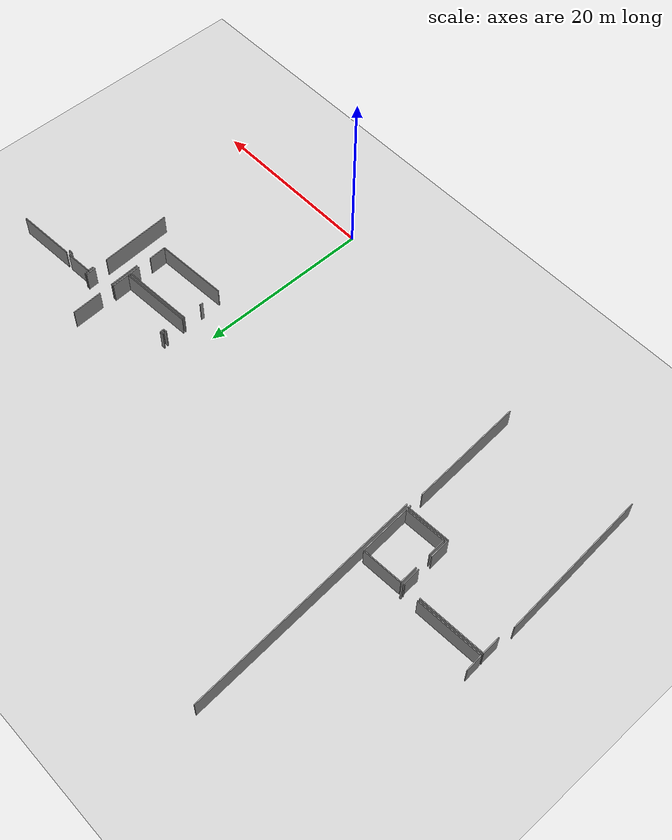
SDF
<sdf version="1.6">
 <world name="default">
  <model name="ground_plane">
   <static>1</static>
   <link name="link">
    <collision name="collision">
     <geometry><plane><normal>0 0 1</normal><size>100 100</size></plane></geometry>
     <surface><friction><ode><mu>100</mu><mu2>50</mu2></ode></friction></surface>
    </collision>
    <visual name="visual">
     <cast_shadows>0</cast_shadows>
     <geometry><plane><normal>0 0 1</normal><size>100 100</size></plane></geometry>
     <material>
      <script><uri>file://media/materials/scripts/gazebo.material</uri><name>Gazebo/Grey</name></script>
     </material>
    </visual>
   </link>
  </model>
  <model name="50025633">
   <static>1</static>
   <link name="Wall_57">
    <collision name="Wall_57_Collision">
     <geometry><box><size>3.56207625701 0.1 2.5</size></box></geometry>
     <pose>1.78103812851 0 1.25 0 0 0</pose>
    </collision>
    <visual name="Wall_57_Visual">
     <pose>1.78103812851 0 1.25 0 0 0</pose>
     <geometry><box><size>3.56207625701 0.1 2.5</size></box></geometry>
     <material>
      <script><uri>file://media/materials/scripts/gazebo.material</uri><name>Gazebo/Grey</name></script>
      <ambient>1 1 1 1</ambient>
     </material>
    </visual>
    <pose>61.6379239159 -26.8075156735 0 0 0 1.62935528593</pose>
   </link>
   <link name="Wall_58">
    <collision name="Wall_58_Collision">
     <geometry><box><size>3.53903980588 0.1 2.5</size></box></geometry>
     <pose>1.76951990294 0 1.25 0 0 0</pose>
    </collision>
    <visual name="Wall_58_Visual">
     <pose>1.76951990294 0 1.25 0 0 0</pose>
     <geometry><box><size>3.53903980588 0.1 2.5</size></box></geometry>
     <material>
      <script><uri>file://media/materials/scripts/gazebo.material</uri><name>Gazebo/Grey</name></script>
      <ambient>1 1 1 1</ambient>
     </material>
    </visual>
    <pose>61.3222300563 -21.662404482 0 0 0 1.62747162536</pose>
   </link>
   <link name="Wall_88">
    <collision name="Wall_88_Collision">
     <geometry><box><size>1.18136185196 0.1 2.5</size></box></geometry>
     <pose>0.590680925979 0 1.25 0 0 0</pose>
    </collision>
    <visual name="Wall_88_Visual">
     <pose>0.590680925979 0 1.25 0 0 0</pose>
     <geometry><box><size>1.18136185196 0.1 2.5</size></box></geometry>
     <material>
      <script><uri>file://media/materials/scripts/gazebo.material</uri><name>Gazebo/Grey</name></script>
      <ambient>1 1 1 1</ambient>
     </material>
    </visual>
    <pose>64.2625658225 -22.0967534984 0 0 0 -1.49296873099</pose>
   </link>
   <link name="Wall_89">
    <collision name="Wall_89_Collision">
     <geometry><box><size>8.34484987003 0.1 2.5</size></box></geometry>
     <pose>4.17242493501 0 1.25 0 0 0</pose>
    </collision>
    <visual name="Wall_89_Visual">
     <pose>4.17242493501 0 1.25 0 0 0</pose>
     <geometry><box><size>8.34484987003 0.1 2.5</size></box></geometry>
     <material>
      <script><uri>file://media/materials/scripts/gazebo.material</uri><name>Gazebo/Grey</name></script>
      <ambient>1 1 1 1</ambient>
     </material>
    </visual>
    <pose>64.4476627856 -24.8484351875 0 0 0 -1.50986368907</pose>
   </link>
   <link name="Wall_98">
    <collision name="Wall_98_Collision">
     <geometry><box><size>8.39197208757 0.1 2.5</size></box></geometry>
     <pose>4.19598604378 0 1.25 0 0 0</pose>
    </collision>
    <visual name="Wall_98_Visual">
     <pose>4.19598604378 0 1.25 0 0 0</pose>
     <geometry><box><size>8.39197208757 0.1 2.5</size></box></geometry>
     <material>
      <script><uri>file://media/materials/scripts/gazebo.material</uri><name>Gazebo/Grey</name></script>
      <ambient>1 1 1 1</ambient>
     </material>
    </visual>
    <pose>61.272176382 -25.3377924297 0 0 0 -3.07698307008</pose>
   </link>
   <link name="Wall_99">
    <collision name="Wall_99_Collision">
     <geometry><box><size>0.419781042566 0.1 2.5</size></box></geometry>
     <pose>0.209890521283 0 1.25 0 0 0</pose>
    </collision>
    <visual name="Wall_99_Visual">
     <pose>0.209890521283 0 1.25 0 0 0</pose>
     <geometry><box><size>0.419781042566 0.1 2.5</size></box></geometry>
     <material>
      <script><uri>file://media/materials/scripts/gazebo.material</uri><name>Gazebo/Grey</name></script>
      <ambient>1 1 1 1</ambient>
     </material>
    </visual>
    <pose>52.7603839142 -23.6607402608 0 0 0 0.0375353603455</pose>
   </link>
   <link name="Wall_100">
    <collision name="Wall_100_Collision">
     <geometry><box><size>0.452642745076 0.1 2.5</size></box></geometry>
     <pose>0.226321372538 0 1.25 0 0 0</pose>
    </collision>
    <visual name="Wall_100_Visual">
     <pose>0.226321372538 0 1.25 0 0 0</pose>
     <geometry><box><size>0.452642745076 0.1 2.5</size></box></geometry>
     <material>
      <script><uri>file://media/materials/scripts/gazebo.material</uri><name>Gazebo/Grey</name></script>
      <ambient>1 1 1 1</ambient>
     </material>
    </visual>
    <pose>53.1798692761 -23.6449873278 0 0 0 1.57079632679</pose>
   </link>
   <link name="Wall_101">
    <collision name="Wall_101_Collision">
     <geometry><box><size>0.432431346231 0.1 2.5</size></box></geometry>
     <pose>0.216215673115 0 1.25 0 0 0</pose>
    </collision>
    <visual name="Wall_101_Visual">
     <pose>0.216215673115 0 1.25 0 0 0</pose>
     <geometry><box><size>0.432431346231 0.1 2.5</size></box></geometry>
     <material>
      <script><uri>file://media/materials/scripts/gazebo.material</uri><name>Gazebo/Grey</name></script>
      <ambient>1 1 1 1</ambient>
     </material>
    </visual>
    <pose>53.1798692761 -23.1923445827 0 0 0 -3.09368815519</pose>
   </link>
   <link name="Wall_104">
    <collision name="Wall_104_Collision">
     <geometry><box><size>2.08970815555 0.1 2.5</size></box></geometry>
     <pose>1.04485407777 0 1.25 0 0 0</pose>
    </collision>
    <visual name="Wall_104_Visual">
     <pose>1.04485407777 0 1.25 0 0 0</pose>
     <geometry><box><size>2.08970815555 0.1 2.5</size></box></geometry>
     <material>
      <script><uri>file://media/materials/scripts/gazebo.material</uri><name>Gazebo/Grey</name></script>
      <ambient>1 1 1 1</ambient>
     </material>
    </visual>
    <pose>61.1455177189 -23.2519262407 0 0 0 -1.51014846007</pose>
   </link>
   <link name="Wall_105">
    <collision name="Wall_105_Collision">
     <geometry><box><size>8.37411255371 0.1 2.5</size></box></geometry>
     <pose>4.18705627685 0 1.25 0 0 0</pose>
    </collision>
    <visual name="Wall_105_Visual">
     <pose>4.18705627685 0 1.25 0 0 0</pose>
     <geometry><box><size>8.37411255371 0.1 2.5</size></box></geometry>
     <material>
      <script><uri>file://media/materials/scripts/gazebo.material</uri><name>Gazebo/Grey</name></script>
      <ambient>1 1 1 1</ambient>
     </material>
    </visual>
    <pose>61.5895217587 -30.4832847406 0 0 0 -3.080432439</pose>
   </link>
   <link name="Wall_106">
    <collision name="Wall_106_Collision">
     <geometry><box><size>0.372786698915 0.1 2.5</size></box></geometry>
     <pose>0.186393349457 0 1.25 0 0 0</pose>
    </collision>
    <visual name="Wall_106_Visual">
     <pose>0.186393349457 0 1.25 0 0 0</pose>
     <geometry><box><size>0.372786698915 0.1 2.5</size></box></geometry>
     <material>
      <script><uri>file://media/materials/scripts/gazebo.material</uri><name>Gazebo/Grey</name></script>
      <ambient>1 1 1 1</ambient>
     </material>
    </visual>
    <pose>53.0984367755 -28.7466509137 0 0 0 1.58749552419</pose>
   </link>
   <link name="Wall_107">
    <collision name="Wall_107_Collision">
     <geometry><box><size>8.34475137368 0.1 2.5</size></box></geometry>
     <pose>4.17237568684 0 1.25 0 0 0</pose>
    </collision>
    <visual name="Wall_107_Visual">
     <pose>4.17237568684 0 1.25 0 0 0</pose>
     <geometry><box><size>8.34475137368 0.1 2.5</size></box></geometry>
     <material>
      <script><uri>file://media/materials/scripts/gazebo.material</uri><name>Gazebo/Grey</name></script>
      <ambient>1 1 1 1</ambient>
     </material>
    </visual>
    <pose>52.9405263258 -26.1696489256 0 0 0 0.0612384050849</pose>
   </link>
   <link name="Wall_108">
    <collision name="Wall_108_Collision">
     <geometry><box><size>1.15936174205 0.1 2.5</size></box></geometry>
     <pose>0.579680871025 0 1.25 0 0 0</pose>
    </collision>
    <visual name="Wall_108_Visual">
     <pose>0.579680871025 0 1.25 0 0 0</pose>
     <geometry><box><size>1.15936174205 0.1 2.5</size></box></geometry>
     <material>
      <script><uri>file://media/materials/scripts/gazebo.material</uri><name>Gazebo/Grey</name></script>
      <ambient>1 1 1 1</ambient>
     </material>
    </visual>
    <pose>61.2696355864 -25.6589489999 0 0 0 -1.49247806233</pose>
   </link>
   <link name="Wall_109">
    <collision name="Wall_109_Collision">
     <geometry><box><size>2.08196548284 0.1 2.5</size></box></geometry>
     <pose>1.04098274142 0 1.25 0 0 0</pose>
    </collision>
    <visual name="Wall_109_Visual">
     <pose>1.04098274142 0 1.25 0 0 0</pose>
     <geometry><box><size>2.08196548284 0.1 2.5</size></box></geometry>
     <material>
      <script><uri>file://media/materials/scripts/gazebo.material</uri><name>Gazebo/Grey</name></script>
      <ambient>1 1 1 1</ambient>
     </material>
    </visual>
    <pose>61.4491427991 -28.4060572568 0 0 0 -1.50331896166</pose>
   </link>
   <link name="Wall_153">
    <collision name="Wall_153_Collision">
     <geometry><box><size>0.676218191817 0.1 2.5</size></box></geometry>
     <pose>0.338109095909 0 1.25 0 0 0</pose>
    </collision>
    <visual name="Wall_153_Visual">
     <pose>0.338109095909 0 1.25 0 0 0</pose>
     <geometry><box><size>0.676218191817 0.1 2.5</size></box></geometry>
     <material>
      <script><uri>file://media/materials/scripts/gazebo.material</uri><name>Gazebo/Grey</name></script>
      <ambient>1 1 1 1</ambient>
     </material>
    </visual>
    <pose>64.6158634576 -23.2604379061 0 0 0 1.61364334767</pose>
   </link>
   <link name="Wall_154">
    <collision name="Wall_154_Collision">
     <geometry><box><size>3.09650773184 0.1 2.5</size></box></geometry>
     <pose>1.54825386592 0 1.25 0 0 0</pose>
    </collision>
    <visual name="Wall_154_Visual">
     <pose>1.54825386592 0 1.25 0 0 0</pose>
     <geometry><box><size>3.09650773184 0.1 2.5</size></box></geometry>
     <material>
      <script><uri>file://media/materials/scripts/gazebo.material</uri><name>Gazebo/Grey</name></script>
      <ambient>1 1 1 1</ambient>
     </material>
    </visual>
    <pose>64.5868983872 -22.5848403428 0 0 0 0.0623190019349</pose>
   </link>
   <link name="Wall_155">
    <collision name="Wall_155_Collision">
     <geometry><box><size>0.387728017774 0.1 2.5</size></box></geometry>
     <pose>0.193864008887 0 1.25 0 0 0</pose>
    </collision>
    <visual name="Wall_155_Visual">
     <pose>0.193864008887 0 1.25 0 0 0</pose>
     <geometry><box><size>0.387728017774 0.1 2.5</size></box></geometry>
     <material>
      <script><uri>file://media/materials/scripts/gazebo.material</uri><name>Gazebo/Grey</name></script>
      <ambient>1 1 1 1</ambient>
     </material>
    </visual>
    <pose>67.6773951763 -22.3919939529 0 0 0 -1.44266178429</pose>
   </link>
   <link name="Wall_156">
    <collision name="Wall_156_Collision">
     <geometry><box><size>0.44693305069 0.1 2.5</size></box></geometry>
     <pose>0.223466525345 0 1.25 0 0 0</pose>
    </collision>
    <visual name="Wall_156_Visual">
     <pose>0.223466525345 0 1.25 0 0 0</pose>
     <geometry><box><size>0.44693305069 0.1 2.5</size></box></geometry>
     <material>
      <script><uri>file://media/materials/scripts/gazebo.material</uri><name>Gazebo/Grey</name></script>
      <ambient>1 1 1 1</ambient>
     </material>
    </visual>
    <pose>67.7269406915 -22.7765433746 0 0 0 0.0985090195683</pose>
   </link>
   <link name="Wall_158">
    <collision name="Wall_158_Collision">
     <geometry><box><size>6.82448991544 0.1 2.5</size></box></geometry>
     <pose>3.41224495772 0 1.25 0 0 0</pose>
    </collision>
    <visual name="Wall_158_Visual">
     <pose>3.41224495772 0 1.25 0 0 0</pose>
     <geometry><box><size>6.82448991544 0.1 2.5</size></box></geometry>
     <material>
      <script><uri>file://media/materials/scripts/gazebo.material</uri><name>Gazebo/Grey</name></script>
      <ambient>1 1 1 1</ambient>
     </material>
    </visual>
    <pose>68.1553188381 -22.375605821 0 0 0 0.0629239273144</pose>
   </link>
   <link name="Wall_182">
    <collision name="Wall_182_Collision">
     <geometry><box><size>0.202649160721 0.1 2.5</size></box></geometry>
     <pose>0.101324580361 0 1.25 0 0 0</pose>
    </collision>
    <visual name="Wall_182_Visual">
     <pose>0.101324580361 0 1.25 0 0 0</pose>
     <geometry><box><size>0.202649160721 0.1 2.5</size></box></geometry>
     <material>
      <script><uri>file://media/materials/scripts/gazebo.material</uri><name>Gazebo/Grey</name></script>
      <ambient>1 1 1 1</ambient>
     </material>
    </visual>
    <pose>64.5720347327 -22.3143726458 0 0 0 1.66559944473</pose>
   </link>
   <link name="Wall_310">
    <collision name="Wall_310_Collision">
     <geometry><box><size>17.4114529436 0.1 2.5</size></box></geometry>
     <pose>8.70572647178 0 1.25 0 0 0</pose>
    </collision>
    <visual name="Wall_310_Visual">
     <pose>8.70572647178 0 1.25 0 0 0</pose>
     <geometry><box><size>17.4114529436 0.1 2.5</size></box></geometry>
     <material>
      <script><uri>file://media/materials/scripts/gazebo.material</uri><name>Gazebo/Grey</name></script>
      <ambient>1 1 1 1</ambient>
     </material>
    </visual>
    <pose>6.66692074623 -26.1376349004 0 0 0 -1.51085753815</pose>
   </link>
   <link name="Wall_320">
    <collision name="Wall_320_Collision">
     <geometry><box><size>2.13230618056 0.1 2.5</size></box></geometry>
     <pose>1.06615309028 0 1.25 0 0 0</pose>
    </collision>
    <visual name="Wall_320_Visual">
     <pose>1.06615309028 0 1.25 0 0 0</pose>
     <geometry><box><size>2.13230618056 0.1 2.5</size></box></geometry>
     <material>
      <script><uri>file://media/materials/scripts/gazebo.material</uri><name>Gazebo/Grey</name></script>
      <ambient>1 1 1 1</ambient>
     </material>
    </visual>
    <pose>6.94374043232 -24.4523251456 0 0 0 1.61782115879</pose>
   </link>
   <link name="Wall_321">
    <collision name="Wall_321_Collision">
     <geometry><box><size>7.48629264339 0.1 2.5</size></box></geometry>
     <pose>3.7431463217 0 1.25 0 0 0</pose>
    </collision>
    <visual name="Wall_321_Visual">
     <pose>3.7431463217 0 1.25 0 0 0</pose>
     <geometry><box><size>7.48629264339 0.1 2.5</size></box></geometry>
     <material>
      <script><uri>file://media/materials/scripts/gazebo.material</uri><name>Gazebo/Grey</name></script>
      <ambient>1 1 1 1</ambient>
     </material>
    </visual>
    <pose>6.84350604392 -22.3223761521 0 0 0 0.0573039329396</pose>
   </link>
   <link name="Wall_322">
    <collision name="Wall_322_Collision">
     <geometry><box><size>0.170605677736 0.1 2.5</size></box></geometry>
     <pose>0.085302838868 0 1.25 0 0 0</pose>
    </collision>
    <visual name="Wall_322_Visual">
     <pose>0.085302838868 0 1.25 0 0 0</pose>
     <geometry><box><size>0.170605677736 0.1 2.5</size></box></geometry>
     <material>
      <script><uri>file://media/materials/scripts/gazebo.material</uri><name>Gazebo/Grey</name></script>
      <ambient>1 1 1 1</ambient>
     </material>
    </visual>
    <pose>16.1049602683 -21.7862682699 0 0 0 0.0372405987278</pose>
   </link>
   <link name="Wall_323">
    <collision name="Wall_323_Collision">
     <geometry><box><size>2.08221801926 0.1 2.5</size></box></geometry>
     <pose>1.04110900963 0 1.25 0 0 0</pose>
    </collision>
    <visual name="Wall_323_Visual">
     <pose>1.04110900963 0 1.25 0 0 0</pose>
     <geometry><box><size>2.08221801926 0.1 2.5</size></box></geometry>
     <material>
      <script><uri>file://media/materials/scripts/gazebo.material</uri><name>Gazebo/Grey</name></script>
      <ambient>1 1 1 1</ambient>
     </material>
    </visual>
    <pose>16.2754476564 -21.7799162808 0 0 0 -1.50705690072</pose>
   </link>
   <link name="Wall_324">
    <collision name="Wall_324_Collision">
     <geometry><box><size>2.30612771198 0.1 2.5</size></box></geometry>
     <pose>1.15306385599 0 1.25 0 0 0</pose>
    </collision>
    <visual name="Wall_324_Visual">
     <pose>1.15306385599 0 1.25 0 0 0</pose>
     <geometry><box><size>2.30612771198 0.1 2.5</size></box></geometry>
     <material>
      <script><uri>file://media/materials/scripts/gazebo.material</uri><name>Gazebo/Grey</name></script>
      <ambient>1 1 1 1</ambient>
     </material>
    </visual>
    <pose>16.5240645108 -25.6500562151 0 0 0 -1.51253543984</pose>
   </link>
   <link name="Wall_325">
    <collision name="Wall_325_Collision">
     <geometry><box><size>4.91206019289 0.1 2.5</size></box></geometry>
     <pose>2.45603009645 0 1.25 0 0 0</pose>
    </collision>
    <visual name="Wall_325_Visual">
     <pose>2.45603009645 0 1.25 0 0 0</pose>
     <geometry><box><size>4.91206019289 0.1 2.5</size></box></geometry>
     <material>
      <script><uri>file://media/materials/scripts/gazebo.material</uri><name>Gazebo/Grey</name></script>
      <ambient>1 1 1 1</ambient>
     </material>
    </visual>
    <pose>16.6583455609 -27.9522711537 0 0 0 0.0595455560165</pose>
   </link>
   <link name="Wall_326">
    <collision name="Wall_326_Collision">
     <geometry><box><size>0.285892975276 0.1 2.5</size></box></geometry>
     <pose>0.142946487638 0 1.25 0 0 0</pose>
    </collision>
    <visual name="Wall_326_Visual">
     <pose>0.142946487638 0 1.25 0 0 0</pose>
     <geometry><box><size>0.285892975276 0.1 2.5</size></box></geometry>
     <material>
      <script><uri>file://media/materials/scripts/gazebo.material</uri><name>Gazebo/Grey</name></script>
      <ambient>1 1 1 1</ambient>
     </material>
    </visual>
    <pose>21.5617000464 -27.6599526142 0 0 0 -1.45366162236</pose>
   </link>
   <link name="Wall_327">
    <collision name="Wall_327_Collision">
     <geometry><box><size>13.0582712503 0.1 2.5</size></box></geometry>
     <pose>6.52913562513 0 1.25 0 0 0</pose>
    </collision>
    <visual name="Wall_327_Visual">
     <pose>6.52913562513 0 1.25 0 0 0</pose>
     <geometry><box><size>13.0582712503 0.1 2.5</size></box></geometry>
     <material>
      <script><uri>file://media/materials/scripts/gazebo.material</uri><name>Gazebo/Grey</name></script>
      <ambient>1 1 1 1</ambient>
     </material>
    </visual>
    <pose>21.6906454256 -29.5669467894 0 0 0 -1.50905780532</pose>
   </link>
   <link name="Wall_328">
    <collision name="Wall_328_Collision">
     <geometry><box><size>4.64260750411 0.1 2.5</size></box></geometry>
     <pose>2.32130375206 0 1.25 0 0 0</pose>
    </collision>
    <visual name="Wall_328_Visual">
     <pose>2.32130375206 0 1.25 0 0 0</pose>
     <geometry><box><size>4.64260750411 0.1 2.5</size></box></geometry>
     <material>
      <script><uri>file://media/materials/scripts/gazebo.material</uri><name>Gazebo/Grey</name></script>
      <ambient>1 1 1 1</ambient>
     </material>
    </visual>
    <pose>21.5634786033 -27.3671259155 0 0 0 -3.07644790126</pose>
   </link>
   <link name="Wall_329">
    <collision name="Wall_329_Collision">
     <geometry><box><size>2.03075047399 0.1 2.5</size></box></geometry>
     <pose>1.01537523699 0 1.25 0 0 0</pose>
    </collision>
    <visual name="Wall_329_Visual">
     <pose>1.01537523699 0 1.25 0 0 0</pose>
     <geometry><box><size>2.03075047399 0.1 2.5</size></box></geometry>
     <material>
      <script><uri>file://media/materials/scripts/gazebo.material</uri><name>Gazebo/Grey</name></script>
      <ambient>1 1 1 1</ambient>
     </material>
    </visual>
    <pose>16.9307188546 -27.6693535581 0 0 0 1.63521309715</pose>
   </link>
   <link name="Wall_330">
    <collision name="Wall_330_Collision">
     <geometry><box><size>2.06174102975 0.1 2.5</size></box></geometry>
     <pose>1.03087051488 0 1.25 0 0 0</pose>
    </collision>
    <visual name="Wall_330_Visual">
     <pose>1.03087051488 0 1.25 0 0 0</pose>
     <geometry><box><size>2.06174102975 0.1 2.5</size></box></geometry>
     <material>
      <script><uri>file://media/materials/scripts/gazebo.material</uri><name>Gazebo/Grey</name></script>
      <ambient>1 1 1 1</ambient>
     </material>
    </visual>
    <pose>16.6917570237 -23.8210644663 0 0 0 1.62751503555</pose>
   </link>
   <link name="Wall_331">
    <collision name="Wall_331_Collision">
     <geometry><box><size>4.60290534723 0.1 2.5</size></box></geometry>
     <pose>2.30145267362 0 1.25 0 0 0</pose>
    </collision>
    <visual name="Wall_331_Visual">
     <pose>2.30145267362 0 1.25 0 0 0</pose>
     <geometry><box><size>4.60290534723 0.1 2.5</size></box></geometry>
     <material>
      <script><uri>file://media/materials/scripts/gazebo.material</uri><name>Gazebo/Grey</name></script>
      <ambient>1 1 1 1</ambient>
     </material>
    </visual>
    <pose>16.5748804238 -21.7626388704 0 0 0 0.0617249909513</pose>
   </link>
   <link name="Wall_332">
    <collision name="Wall_332_Collision">
     <geometry><box><size>5.90161833046 0.1 2.5</size></box></geometry>
     <pose>2.95080916523 0 1.25 0 0 0</pose>
    </collision>
    <visual name="Wall_332_Visual">
     <pose>2.95080916523 0 1.25 0 0 0</pose>
     <geometry><box><size>5.90161833046 0.1 2.5</size></box></geometry>
     <material>
      <script><uri>file://media/materials/scripts/gazebo.material</uri><name>Gazebo/Grey</name></script>
      <ambient>1 1 1 1</ambient>
     </material>
    </visual>
    <pose>21.1690200786 -21.4787049565 0 0 0 -1.50390741615</pose>
   </link>
   <link name="Wall_333">
    <collision name="Wall_333_Collision">
     <geometry><box><size>0.199124231626 0.1 2.5</size></box></geometry>
     <pose>0.099562115813 0 1.25 0 0 0</pose>
    </collision>
    <visual name="Wall_333_Visual">
     <pose>0.099562115813 0 1.25 0 0 0</pose>
     <geometry><box><size>0.199124231626 0.1 2.5</size></box></geometry>
     <material>
      <script><uri>file://media/materials/scripts/gazebo.material</uri><name>Gazebo/Grey</name></script>
      <ambient>1 1 1 1</ambient>
     </material>
    </visual>
    <pose>16.2939954647 -21.512243459 0 0 0 -3.08605875888</pose>
   </link>
   <link name="Wall_334">
    <collision name="Wall_334_Collision">
     <geometry><box><size>7.47046813735 0.1 2.5</size></box></geometry>
     <pose>3.73523406867 0 1.25 0 0 0</pose>
    </collision>
    <visual name="Wall_334_Visual">
     <pose>3.73523406867 0 1.25 0 0 0</pose>
     <geometry><box><size>7.47046813735 0.1 2.5</size></box></geometry>
     <material>
      <script><uri>file://media/materials/scripts/gazebo.material</uri><name>Gazebo/Grey</name></script>
      <ambient>1 1 1 1</ambient>
     </material>
    </visual>
    <pose>14.2945163278 -21.6117156087 0 0 0 -3.08093049634</pose>
   </link>
   <link name="Wall_335">
    <collision name="Wall_335_Collision">
     <geometry><box><size>1.93222854354 0.1 2.5</size></box></geometry>
     <pose>0.96611427177 0 1.25 0 0 0</pose>
    </collision>
    <visual name="Wall_335_Visual">
     <pose>0.96611427177 0 1.25 0 0 0</pose>
     <geometry><box><size>1.93222854354 0.1 2.5</size></box></geometry>
     <material>
      <script><uri>file://media/materials/scripts/gazebo.material</uri><name>Gazebo/Grey</name></script>
      <ambient>1 1 1 1</ambient>
     </material>
    </visual>
    <pose>6.8377892537 -22.0646124334 0 0 0 1.64021600263</pose>
   </link>
   <link name="Wall_348">
    <collision name="Wall_348_Collision">
     <geometry><box><size>27.2999326057 0.1 2.5</size></box></geometry>
     <pose>13.6499663029 0 1.25 0 0 0</pose>
    </collision>
    <visual name="Wall_348_Visual">
     <pose>13.6499663029 0 1.25 0 0 0</pose>
     <geometry><box><size>27.2999326057 0.1 2.5</size></box></geometry>
     <material>
      <script><uri>file://media/materials/scripts/gazebo.material</uri><name>Gazebo/Grey</name></script>
      <ambient>1 1 1 1</ambient>
     </material>
    </visual>
    <pose>21.9236363867 -27.8257395303 0 0 0 1.63053138388</pose>
   </link>
   <pose>-50.4 47.6653699081 0 0 0 0</pose>
  </model>
 </world>
</sdf>
